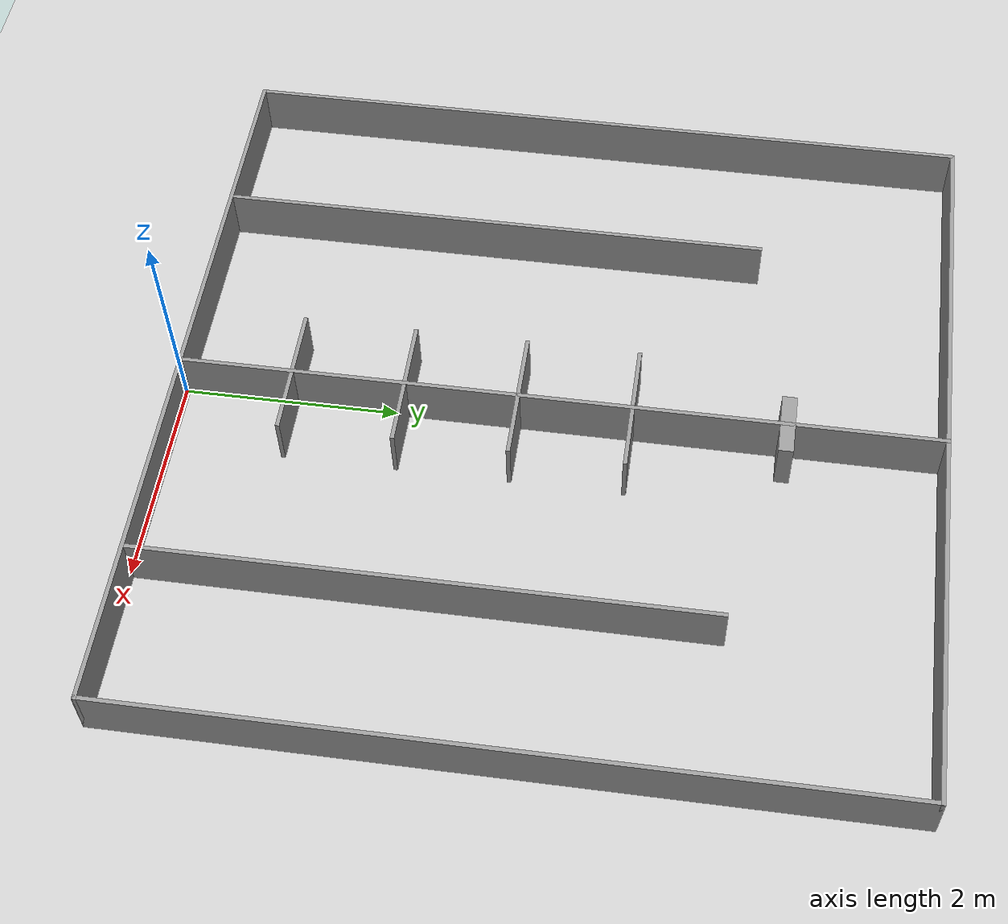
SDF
<?xml version="1.0" ?>
<sdf version="1.9">
  <world name="khr2026_field_generated">
    <physics name="1ms" type="ignored">
      <max_step_size>0.001</max_step_size>
      <real_time_factor>1.0</real_time_factor>
    </physics>
    <plugin filename="gz-sim-physics-system" name="gz::sim::systems::Physics"></plugin>
    <plugin filename="gz-sim-user-commands-system" name="gz::sim::systems::UserCommands"></plugin>
    <plugin filename="gz-sim-scene-broadcaster-system" name="gz::sim::systems::SceneBroadcaster"></plugin>
    <plugin filename="gz-sim-sensors-system" name="gz::sim::systems::Sensors">
      <render_engine>ogre2</render_engine>
    </plugin>
    <plugin filename="gz-sim-contact-system" name="gz::sim::systems::Contact"></plugin>

    <light type="directional" name="sun">
      <cast_shadows>true</cast_shadows>
      <pose>0 0 10 0 0 0</pose>
      <diffuse>0.8 0.8 0.8 1</diffuse>
      <specular>0.2 0.2 0.2 1</specular>
      <attenuation><range>1000</range><constant>0.9</constant><linear>0.01</linear><quadratic>0.001</quadratic></attenuation>
      <direction>-0.5 0.1 -0.9</direction>
    </light>

    <model name="ground_plane">
      <static>true</static>
      <link name="link">
        <collision name="collision"><geometry><plane><normal>0 0 1</normal><size>10 10</size></plane></geometry></collision>
        <visual name="visual">
          <geometry><plane><normal>0 0 1</normal><size>10 10</size></plane></geometry>
          <material><ambient>0.8 0.8 0.8 1</ambient><diffuse>0.8 0.8 0.8 1</diffuse></material>
        </visual>
      </link>
    </model>

    <!-- wall_south -->
    <model name="wall_south">
      <static>true</static>
      <pose>0.0 6.981 0.25 0 0 0.0</pose>
      <link name="link">
        <collision name="collision"><geometry><box><size>6.962 0.038 0.5</size></box></geometry></collision>
        <visual name="visual">
          <geometry><box><size>6.962 0.038 0.5</size></box></geometry>
          <material><ambient>0.6 0.6 0.6 1</ambient><diffuse>0.6 0.6 0.6 1</diffuse></material>
        </visual>
      </link>
    </model>

    <!-- wall_north -->
    <model name="wall_north">
      <static>true</static>
      <pose>0.0 0.019000000000000128 0.25 0 0 0.0</pose>
      <link name="link">
        <collision name="collision"><geometry><box><size>6.962 0.038 0.5</size></box></geometry></collision>
        <visual name="visual">
          <geometry><box><size>6.962 0.038 0.5</size></box></geometry>
          <material><ambient>0.6 0.6 0.6 1</ambient><diffuse>0.6 0.6 0.6 1</diffuse></material>
        </visual>
      </link>
    </model>

    <!-- wall_west -->
    <model name="wall_west">
      <static>true</static>
      <pose>-3.4619999999999997 3.5 0.25 0 0 0.0</pose>
      <link name="link">
        <collision name="collision"><geometry><box><size>0.038 7.0 0.5</size></box></geometry></collision>
        <visual name="visual">
          <geometry><box><size>0.038 7.0 0.5</size></box></geometry>
          <material><ambient>0.6 0.6 0.6 1</ambient><diffuse>0.6 0.6 0.6 1</diffuse></material>
        </visual>
      </link>
    </model>

    <!-- wall_east -->
    <model name="wall_east">
      <static>true</static>
      <pose>3.4619999999999997 3.5 0.25 0 0 0.0</pose>
      <link name="link">
        <collision name="collision"><geometry><box><size>0.038 7.0 0.5</size></box></geometry></collision>
        <visual name="visual">
          <geometry><box><size>0.038 7.0 0.5</size></box></geometry>
          <material><ambient>0.6 0.6 0.6 1</ambient><diffuse>0.6 0.6 0.6 1</diffuse></material>
        </visual>
      </link>
    </model>

    <!-- center_divider -->
    <model name="center_divider">
      <static>true</static>
      <pose>0.0 3.5 0.25 0 0 -1.5707963267948966</pose>
      <link name="link">
        <collision name="collision"><geometry><box><size>7.0 0.038 0.5</size></box></geometry></collision>
        <visual name="visual">
          <geometry><box><size>7.0 0.038 0.5</size></box></geometry>
          <material><ambient>0.6 0.6 0.6 1</ambient><diffuse>0.6 0.6 0.6 1</diffuse></material>
        </visual>
      </link>
    </model>

    <!-- yagura_1 -->
    <model name="yagura_1">
      <static>true</static>
      <pose>0.0 4.170999999999999 0.25 0 0 -3.141592653589793</pose>
      <link name="link">
        <collision name="collision"><geometry><box><size>1.238 0.038 0.5</size></box></geometry></collision>
        <visual name="visual">
          <geometry><box><size>1.238 0.038 0.5</size></box></geometry>
          <material><ambient>0.6 0.6 0.6 1</ambient><diffuse>0.6 0.6 0.6 1</diffuse></material>
        </visual>
      </link>
    </model>

    <!-- yagura_2 -->
    <model name="yagura_2">
      <static>true</static>
      <pose>0.0 3.133 0.25 0 0 -3.141592653589793</pose>
      <link name="link">
        <collision name="collision"><geometry><box><size>1.238 0.038 0.5</size></box></geometry></collision>
        <visual name="visual">
          <geometry><box><size>1.238 0.038 0.5</size></box></geometry>
          <material><ambient>0.6 0.6 0.6 1</ambient><diffuse>0.6 0.6 0.6 1</diffuse></material>
        </visual>
      </link>
    </model>

    <!-- yagura_3 -->
    <model name="yagura_3">
      <static>true</static>
      <pose>0.0 2.0949999999999998 0.25 0 0 -3.141592653589793</pose>
      <link name="link">
        <collision name="collision"><geometry><box><size>1.238 0.038 0.5</size></box></geometry></collision>
        <visual name="visual">
          <geometry><box><size>1.238 0.038 0.5</size></box></geometry>
          <material><ambient>0.6 0.6 0.6 1</ambient><diffuse>0.6 0.6 0.6 1</diffuse></material>
        </visual>
      </link>
    </model>

    <!-- yagura_4 -->
    <model name="yagura_4">
      <static>true</static>
      <pose>0.0 1.0570000000000004 0.25 0 0 -3.141592653589793</pose>
      <link name="link">
        <collision name="collision"><geometry><box><size>1.238 0.038 0.5</size></box></geometry></collision>
        <visual name="visual">
          <geometry><box><size>1.238 0.038 0.5</size></box></geometry>
          <material><ambient>0.6 0.6 0.6 1</ambient><diffuse>0.6 0.6 0.6 1</diffuse></material>
        </visual>
      </link>
    </model>

    <!-- area_1 -->
    <model name="area_1">
      <static>true</static>
      <pose>2.012 2.614 0.25 0 0 -1.5707963267948966</pose>
      <link name="link">
        <collision name="collision"><geometry><box><size>5.151999999999999 0.038 0.5</size></box></geometry></collision>
        <visual name="visual">
          <geometry><box><size>5.151999999999999 0.038 0.5</size></box></geometry>
          <material><ambient>0.6 0.6 0.6 1</ambient><diffuse>0.6 0.6 0.6 1</diffuse></material>
        </visual>
      </link>
    </model>

    <!-- area_2 -->
    <model name="area_2">
      <static>true</static>
      <pose>-2.012 2.614 0.25 0 0 -1.5707963267948966</pose>
      <link name="link">
        <collision name="collision"><geometry><box><size>5.151999999999999 0.038 0.5</size></box></geometry></collision>
        <visual name="visual">
          <geometry><box><size>5.151999999999999 0.038 0.5</size></box></geometry>
          <material><ambient>0.6 0.6 0.6 1</ambient><diffuse>0.6 0.6 0.6 1</diffuse></material>
        </visual>
      </link>
    </model>

    <!-- honmaru -->
    <model name="honmaru">
      <static>true</static>
      <pose>0.0 5.562 0.25 0 0 -3.141592653589793</pose>
      <link name="link">
        <collision name="collision"><geometry><box><size>0.594 0.136 0.5</size></box></geometry></collision>
        <visual name="visual">
          <geometry><box><size>0.594 0.136 0.5</size></box></geometry>
          <material><ambient>0.6 0.6 0.6 1</ambient><diffuse>0.6 0.6 0.6 1</diffuse></material>
        </visual>
      </link>
    </model>

  </world>
</sdf>
